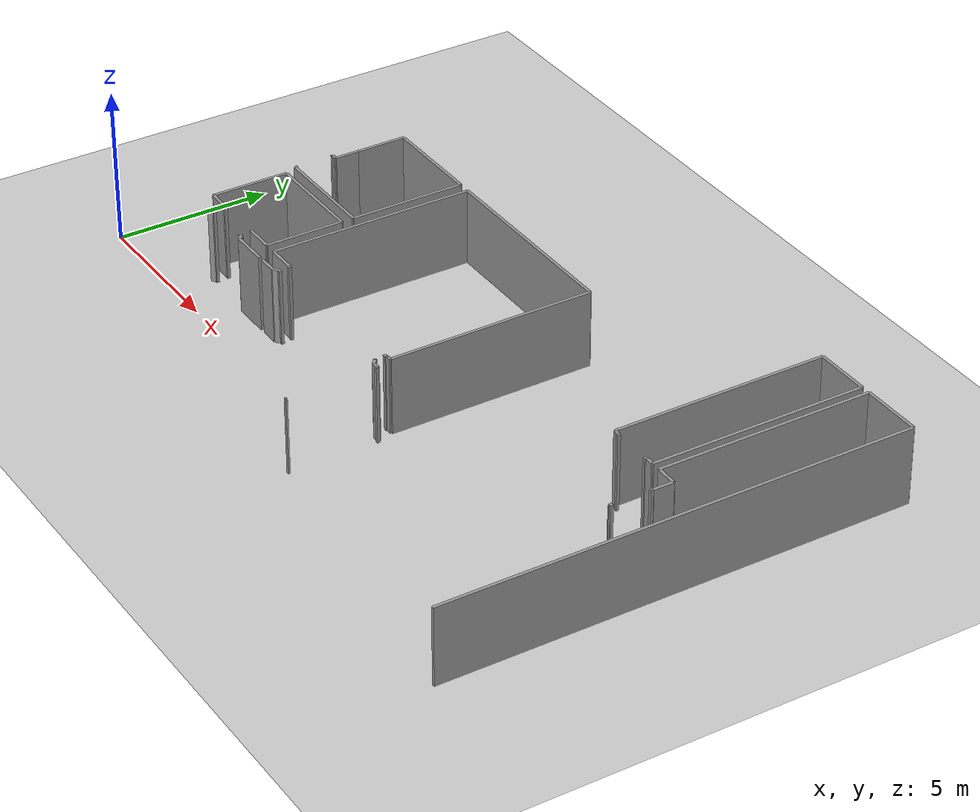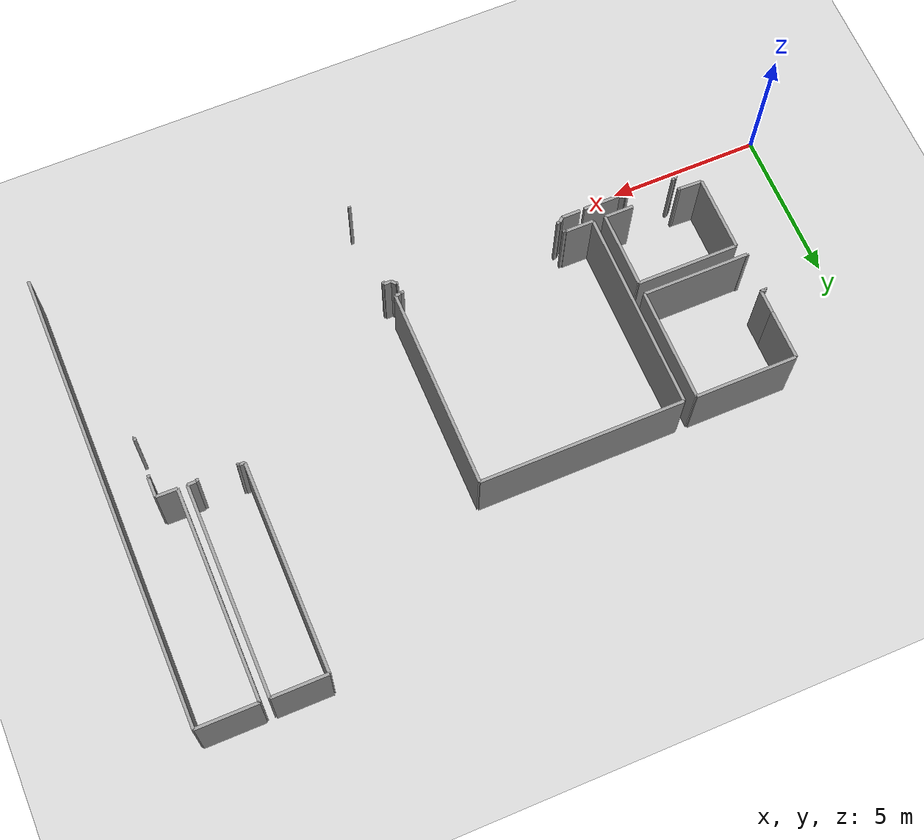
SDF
<sdf version="1.6">
 <world name="default">
  <model name="ground_plane">
   <static>1</static>
   <link name="link">
    <collision name="collision">
     <geometry><plane><normal>0 0 1</normal><size>100 100</size></plane></geometry>
     <surface><friction><ode><mu>100</mu><mu2>50</mu2></ode></friction></surface>
    </collision>
    <visual name="visual">
     <cast_shadows>0</cast_shadows>
     <geometry><plane><normal>0 0 1</normal><size>100 100</size></plane></geometry>
     <material>
      <script><uri>file://media/materials/scripts/gazebo.material</uri><name>Gazebo/Grey</name></script>
     </material>
    </visual>
   </link>
  </model>
  <model name="0510030940_A_40_1_104">
   <static>1</static>
   <link name="Wall_31">
    <collision name="Wall_31_Collision">
     <geometry><box><size>0.172371779898 0.1 2.5</size></box></geometry>
     <pose>0.0861858899488 0 1.25 0 0 0</pose>
    </collision>
    <visual name="Wall_31_Visual">
     <pose>0.0861858899488 0 1.25 0 0 0</pose>
     <geometry><box><size>0.172371779898 0.1 2.5</size></box></geometry>
     <material>
      <script><uri>file://media/materials/scripts/gazebo.material</uri><name>Gazebo/Grey</name></script>
      <ambient>1 1 1 1</ambient>
     </material>
    </visual>
    <pose>27.403807055 -10.7818694724 0 0 0 0.805207876201</pose>
   </link>
   <link name="Wall_32">
    <collision name="Wall_32_Collision">
     <geometry><box><size>0.0859001728169 0.1 2.5</size></box></geometry>
     <pose>0.0429500864085 0 1.25 0 0 0</pose>
    </collision>
    <visual name="Wall_32_Visual">
     <pose>0.0429500864085 0 1.25 0 0 0</pose>
     <geometry><box><size>0.0859001728169 0.1 2.5</size></box></geometry>
     <material>
      <script><uri>file://media/materials/scripts/gazebo.material</uri><name>Gazebo/Grey</name></script>
      <ambient>1 1 1 1</ambient>
     </material>
    </visual>
    <pose>27.5232540409 -10.6575937786 0 0 0 0.0</pose>
   </link>
   <link name="Wall_33">
    <collision name="Wall_33_Collision">
     <geometry><box><size>0.0825963200163 0.1 2.5</size></box></geometry>
     <pose>0.0412981600081 0 1.25 0 0 0</pose>
    </collision>
    <visual name="Wall_33_Visual">
     <pose>0.0412981600081 0 1.25 0 0 0</pose>
     <geometry><box><size>0.0825963200163 0.1 2.5</size></box></geometry>
     <material>
      <script><uri>file://media/materials/scripts/gazebo.material</uri><name>Gazebo/Grey</name></script>
      <ambient>1 1 1 1</ambient>
     </material>
    </visual>
    <pose>29.1739097286 -10.6575937786 0 0 0 0.0</pose>
   </link>
   <link name="Wall_34">
    <collision name="Wall_34_Collision">
     <geometry><box><size>0.185640458335 0.1 2.5</size></box></geometry>
     <pose>0.0928202291675 0 1.25 0 0 0</pose>
    </collision>
    <visual name="Wall_34_Visual">
     <pose>0.0928202291675 0 1.25 0 0 0</pose>
     <geometry><box><size>0.185640458335 0.1 2.5</size></box></geometry>
     <material>
      <script><uri>file://media/materials/scripts/gazebo.material</uri><name>Gazebo/Grey</name></script>
      <ambient>1 1 1 1</ambient>
     </material>
    </visual>
    <pose>29.2565060486 -10.6575937786 0 0 0 -0.77862188764</pose>
   </link>
   <link name="Wall_35">
    <collision name="Wall_35_Collision">
     <geometry><box><size>1.23030395446 0.1 2.5</size></box></geometry>
     <pose>0.615151977229 0 1.25 0 0 0</pose>
    </collision>
    <visual name="Wall_35_Visual">
     <pose>0.615151977229 0 1.25 0 0 0</pose>
     <geometry><box><size>1.23030395446 0.1 2.5</size></box></geometry>
     <material>
      <script><uri>file://media/materials/scripts/gazebo.material</uri><name>Gazebo/Grey</name></script>
      <ambient>1 1 1 1</ambient>
     </material>
    </visual>
    <pose>29.3886601606 -10.787968893 0 0 0 0.0</pose>
   </link>
   <link name="Wall_60">
    <collision name="Wall_60_Collision">
     <geometry><box><size>1.62905357324 0.1 2.5</size></box></geometry>
     <pose>0.814526786622 0 1.25 0 0 0</pose>
    </collision>
    <visual name="Wall_60_Visual">
     <pose>0.814526786622 0 1.25 0 0 0</pose>
     <geometry><box><size>1.62905357324 0.1 2.5</size></box></geometry>
     <material>
      <script><uri>file://media/materials/scripts/gazebo.material</uri><name>Gazebo/Grey</name></script>
      <ambient>1 1 1 1</ambient>
     </material>
    </visual>
    <pose>26.7643844668 -5.2906119752 0 0 0 1.57079632679</pose>
   </link>
   <link name="Wall_61">
    <collision name="Wall_61_Collision">
     <geometry><box><size>3.36027244078 0.1 2.5</size></box></geometry>
     <pose>1.68013622039 0 1.25 0 0 0</pose>
    </collision>
    <visual name="Wall_61_Visual">
     <pose>1.68013622039 0 1.25 0 0 0</pose>
     <geometry><box><size>3.36027244078 0.1 2.5</size></box></geometry>
     <material>
      <script><uri>file://media/materials/scripts/gazebo.material</uri><name>Gazebo/Grey</name></script>
      <ambient>1 1 1 1</ambient>
     </material>
    </visual>
    <pose>26.7643844668 -3.66155840195 0 0 0 0.0</pose>
   </link>
   <link name="Wall_62">
    <collision name="Wall_62_Collision">
     <geometry><box><size>3.71009962387 0.1 2.5</size></box></geometry>
     <pose>1.85504981193 0 1.25 0 0 0</pose>
    </collision>
    <visual name="Wall_62_Visual">
     <pose>1.85504981193 0 1.25 0 0 0</pose>
     <geometry><box><size>3.71009962387 0.1 2.5</size></box></geometry>
     <material>
      <script><uri>file://media/materials/scripts/gazebo.material</uri><name>Gazebo/Grey</name></script>
      <ambient>1 1 1 1</ambient>
     </material>
    </visual>
    <pose>30.1246569076 -3.66155840195 0 0 0 -1.57079632679</pose>
   </link>
   <link name="Wall_63">
    <collision name="Wall_63_Collision">
     <geometry><box><size>3.52660872217 0.1 2.5</size></box></geometry>
     <pose>1.76330436109 0 1.25 0 0 0</pose>
    </collision>
    <visual name="Wall_63_Visual">
     <pose>1.76330436109 0 1.25 0 0 0</pose>
     <geometry><box><size>3.52660872217 0.1 2.5</size></box></geometry>
     <material>
      <script><uri>file://media/materials/scripts/gazebo.material</uri><name>Gazebo/Grey</name></script>
      <ambient>1 1 1 1</ambient>
     </material>
    </visual>
    <pose>30.1246569076 -7.37165802582 0 0 0 3.14159265359</pose>
   </link>
   <link name="Wall_64">
    <collision name="Wall_64_Collision">
     <geometry><box><size>0.0707786926909 0.1 2.5</size></box></geometry>
     <pose>0.0353893463454 0 1.25 0 0 0</pose>
    </collision>
    <visual name="Wall_64_Visual">
     <pose>0.0353893463454 0 1.25 0 0 0</pose>
     <geometry><box><size>0.0707786926909 0.1 2.5</size></box></geometry>
     <material>
      <script><uri>file://media/materials/scripts/gazebo.material</uri><name>Gazebo/Grey</name></script>
      <ambient>1 1 1 1</ambient>
     </material>
    </visual>
    <pose>26.5980481854 -7.37165802582 0 0 0 1.57079632679</pose>
   </link>
   <link name="Wall_65">
    <collision name="Wall_65_Collision">
     <geometry><box><size>0.0505743621023 0.1 2.5</size></box></geometry>
     <pose>0.0252871810511 0 1.25 0 0 0</pose>
    </collision>
    <visual name="Wall_65_Visual">
     <pose>0.0252871810511 0 1.25 0 0 0</pose>
     <geometry><box><size>0.0505743621023 0.1 2.5</size></box></geometry>
     <material>
      <script><uri>file://media/materials/scripts/gazebo.material</uri><name>Gazebo/Grey</name></script>
      <ambient>1 1 1 1</ambient>
     </material>
    </visual>
    <pose>26.5980481854 -6.11022161228 0 0 0 1.57079632679</pose>
   </link>
   <link name="Wall_66">
    <collision name="Wall_66_Collision">
     <geometry><box><size>0.163794856155 0.1 2.5</size></box></geometry>
     <pose>0.0818974280777 0 1.25 0 0 0</pose>
    </collision>
    <visual name="Wall_66_Visual">
     <pose>0.0818974280777 0 1.25 0 0 0</pose>
     <geometry><box><size>0.163794856155 0.1 2.5</size></box></geometry>
     <material>
      <script><uri>file://media/materials/scripts/gazebo.material</uri><name>Gazebo/Grey</name></script>
      <ambient>1 1 1 1</ambient>
     </material>
    </visual>
    <pose>26.5980481854 -6.05964725018 0 0 0 0.0</pose>
   </link>
   <link name="Wall_67">
    <collision name="Wall_67_Collision">
     <geometry><box><size>0.769039474285 0.1 2.5</size></box></geometry>
     <pose>0.384519737143 0 1.25 0 0 0</pose>
    </collision>
    <visual name="Wall_67_Visual">
     <pose>0.384519737143 0 1.25 0 0 0</pose>
     <geometry><box><size>0.769039474285 0.1 2.5</size></box></geometry>
     <material>
      <script><uri>file://media/materials/scripts/gazebo.material</uri><name>Gazebo/Grey</name></script>
      <ambient>1 1 1 1</ambient>
     </material>
    </visual>
    <pose>26.7618430416 -6.05964725018 0 0 0 1.56749164616</pose>
   </link>
   <link name="Wall_68">
    <collision name="Wall_68_Collision">
     <geometry><box><size>2.47534817526 0.1 2.5</size></box></geometry>
     <pose>1.23767408763 0 1.25 0 0 0</pose>
    </collision>
    <visual name="Wall_68_Visual">
     <pose>1.23767408763 0 1.25 0 0 0</pose>
     <geometry><box><size>2.47534817526 0.1 2.5</size></box></geometry>
     <material>
      <script><uri>file://media/materials/scripts/gazebo.material</uri><name>Gazebo/Grey</name></script>
      <ambient>1 1 1 1</ambient>
     </material>
    </visual>
    <pose>26.7731523839 -10.2488055301 0 0 0 1.57079632679</pose>
   </link>
   <link name="Wall_69">
    <collision name="Wall_69_Collision">
     <geometry><box><size>3.351631595 0.1 2.5</size></box></geometry>
     <pose>1.6758157975 0 1.25 0 0 0</pose>
    </collision>
    <visual name="Wall_69_Visual">
     <pose>1.6758157975 0 1.25 0 0 0</pose>
     <geometry><box><size>3.351631595 0.1 2.5</size></box></geometry>
     <material>
      <script><uri>file://media/materials/scripts/gazebo.material</uri><name>Gazebo/Grey</name></script>
      <ambient>1 1 1 1</ambient>
     </material>
    </visual>
    <pose>26.7731523839 -7.77345735488 0 0 0 0.0</pose>
   </link>
   <link name="Wall_70">
    <collision name="Wall_70_Collision">
     <geometry><box><size>2.50355799532 0.1 2.5</size></box></geometry>
     <pose>1.25177899766 0 1.25 0 0 0</pose>
    </collision>
    <visual name="Wall_70_Visual">
     <pose>1.25177899766 0 1.25 0 0 0</pose>
     <geometry><box><size>2.50355799532 0.1 2.5</size></box></geometry>
     <material>
      <script><uri>file://media/materials/scripts/gazebo.material</uri><name>Gazebo/Grey</name></script>
      <ambient>1 1 1 1</ambient>
     </material>
    </visual>
    <pose>30.1247839789 -7.77345735488 0 0 0 -1.57079632679</pose>
   </link>
   <link name="Wall_71">
    <collision name="Wall_71_Collision">
     <geometry><box><size>0.964470875267 0.1 2.5</size></box></geometry>
     <pose>0.482235437633 0 1.25 0 0 0</pose>
    </collision>
    <visual name="Wall_71_Visual">
     <pose>0.482235437633 0 1.25 0 0 0</pose>
     <geometry><box><size>0.964470875267 0.1 2.5</size></box></geometry>
     <material>
      <script><uri>file://media/materials/scripts/gazebo.material</uri><name>Gazebo/Grey</name></script>
      <ambient>1 1 1 1</ambient>
     </material>
    </visual>
    <pose>30.1247839789 -10.2770153502 0 0 0 3.14159265359</pose>
   </link>
   <link name="Wall_72">
    <collision name="Wall_72_Collision">
     <geometry><box><size>0.0733201179221 0.1 2.5</size></box></geometry>
     <pose>0.0366600589611 0 1.25 0 0 0</pose>
    </collision>
    <visual name="Wall_72_Visual">
     <pose>0.0366600589611 0 1.25 0 0 0</pose>
     <geometry><box><size>0.0733201179221 0.1 2.5</size></box></geometry>
     <material>
      <script><uri>file://media/materials/scripts/gazebo.material</uri><name>Gazebo/Grey</name></script>
      <ambient>1 1 1 1</ambient>
     </material>
    </visual>
    <pose>27.5865355291 -10.2770153502 0 0 0 3.14159265359</pose>
   </link>
   <link name="Wall_73">
    <collision name="Wall_73_Collision">
     <geometry><box><size>0.740600485007 0.1 2.5</size></box></geometry>
     <pose>0.370300242503 0 1.25 0 0 0</pose>
    </collision>
    <visual name="Wall_73_Visual">
     <pose>0.370300242503 0 1.25 0 0 0</pose>
     <geometry><box><size>0.740600485007 0.1 2.5</size></box></geometry>
     <material>
      <script><uri>file://media/materials/scripts/gazebo.material</uri><name>Gazebo/Grey</name></script>
      <ambient>1 1 1 1</ambient>
     </material>
    </visual>
    <pose>27.5132154112 -10.2770153502 0 0 0 3.10349296742</pose>
   </link>
   <link name="Wall_75">
    <collision name="Wall_75_Collision">
     <geometry><box><size>0.606511131443 0.1 2.5</size></box></geometry>
     <pose>0.303255565721 0 1.25 0 0 0</pose>
    </collision>
    <visual name="Wall_75_Visual">
     <pose>0.303255565721 0 1.25 0 0 0</pose>
     <geometry><box><size>0.606511131443 0.1 2.5</size></box></geometry>
     <material>
      <script><uri>file://media/materials/scripts/gazebo.material</uri><name>Gazebo/Grey</name></script>
      <ambient>1 1 1 1</ambient>
     </material>
    </visual>
    <pose>30.7725932703 -10.777294907 0 0 0 0.0</pose>
   </link>
   <link name="Wall_76">
    <collision name="Wall_76_Collision">
     <geometry><box><size>0.185306413497 0.1 2.5</size></box></geometry>
     <pose>0.0926532067485 0 1.25 0 0 0</pose>
    </collision>
    <visual name="Wall_76_Visual">
     <pose>0.0926532067485 0 1.25 0 0 0</pose>
     <geometry><box><size>0.185306413497 0.1 2.5</size></box></geometry>
     <material>
      <script><uri>file://media/materials/scripts/gazebo.material</uri><name>Gazebo/Grey</name></script>
      <ambient>1 1 1 1</ambient>
     </material>
    </visual>
    <pose>31.3791044017 -10.777294907 0 0 0 0.737861187709</pose>
   </link>
   <link name="Wall_77">
    <collision name="Wall_77_Collision">
     <geometry><box><size>0.0997509403273 0.1 2.5</size></box></geometry>
     <pose>0.0498754701637 0 1.25 0 0 0</pose>
    </collision>
    <visual name="Wall_77_Visual">
     <pose>0.0498754701637 0 1.25 0 0 0</pose>
     <geometry><box><size>0.0997509403273 0.1 2.5</size></box></geometry>
     <material>
      <script><uri>file://media/materials/scripts/gazebo.material</uri><name>Gazebo/Grey</name></script>
      <ambient>1 1 1 1</ambient>
     </material>
    </visual>
    <pose>31.516214293 -10.6526379994 0 0 0 0.0</pose>
   </link>
   <link name="Wall_78">
    <collision name="Wall_78_Collision">
     <geometry><box><size>0.0546406424723 0.1 2.5</size></box></geometry>
     <pose>0.0273203212362 0 1.25 0 0 0</pose>
    </collision>
    <visual name="Wall_78_Visual">
     <pose>0.0273203212362 0 1.25 0 0 0</pose>
     <geometry><box><size>0.0546406424723 0.1 2.5</size></box></geometry>
     <material>
      <script><uri>file://media/materials/scripts/gazebo.material</uri><name>Gazebo/Grey</name></script>
      <ambient>1 1 1 1</ambient>
     </material>
    </visual>
    <pose>37.0069635051 -10.6526379994 0 0 0 0.0</pose>
   </link>
   <link name="Wall_79">
    <collision name="Wall_79_Collision">
     <geometry><box><size>0.177522691041 0.1 2.5</size></box></geometry>
     <pose>0.0887613455203 0 1.25 0 0 0</pose>
    </collision>
    <visual name="Wall_79_Visual">
     <pose>0.0887613455203 0 1.25 0 0 0</pose>
     <geometry><box><size>0.177522691041 0.1 2.5</size></box></geometry>
     <material>
      <script><uri>file://media/materials/scripts/gazebo.material</uri><name>Gazebo/Grey</name></script>
      <ambient>1 1 1 1</ambient>
     </material>
    </visual>
    <pose>37.0616041476 -10.6526379994 0 0 0 -0.826914314919</pose>
   </link>
   <link name="Wall_80">
    <collision name="Wall_80_Collision">
     <geometry><box><size>0.243087323371 0.1 2.5</size></box></geometry>
     <pose>0.121543661685 0 1.25 0 0 0</pose>
    </collision>
    <visual name="Wall_80_Visual">
     <pose>0.121543661685 0 1.25 0 0 0</pose>
     <geometry><box><size>0.243087323371 0.1 2.5</size></box></geometry>
     <material>
      <script><uri>file://media/materials/scripts/gazebo.material</uri><name>Gazebo/Grey</name></script>
      <ambient>1 1 1 1</ambient>
     </material>
    </visual>
    <pose>37.181813561 -10.7832672563 0 0 0 0.0</pose>
   </link>
   <link name="Wall_81">
    <collision name="Wall_81_Collision">
     <geometry><box><size>0.0902205957101 0.1 2.5</size></box></geometry>
     <pose>0.045110297855 0 1.25 0 0 0</pose>
    </collision>
    <visual name="Wall_81_Visual">
     <pose>0.045110297855 0 1.25 0 0 0</pose>
     <geometry><box><size>0.0902205957101 0.1 2.5</size></box></geometry>
     <material>
      <script><uri>file://media/materials/scripts/gazebo.material</uri><name>Gazebo/Grey</name></script>
      <ambient>1 1 1 1</ambient>
     </material>
    </visual>
    <pose>37.4249008844 -10.7832672563 0 0 0 -1.57079632679</pose>
   </link>
   <link name="Wall_82">
    <collision name="Wall_82_Collision">
     <geometry><box><size>0.0581986377961 0.1 2.5</size></box></geometry>
     <pose>0.029099318898 0 1.25 0 0 0</pose>
    </collision>
    <visual name="Wall_82_Visual">
     <pose>0.029099318898 0 1.25 0 0 0</pose>
     <geometry><box><size>0.0581986377961 0.1 2.5</size></box></geometry>
     <material>
      <script><uri>file://media/materials/scripts/gazebo.material</uri><name>Gazebo/Grey</name></script>
      <ambient>1 1 1 1</ambient>
     </material>
    </visual>
    <pose>37.4249008844 -13.6601606181 0 0 0 -1.57079632679</pose>
   </link>
   <link name="Wall_91">
    <collision name="Wall_91_Collision">
     <geometry><box><size>6.61660058961 0.1 2.5</size></box></geometry>
     <pose>3.30830029481 0 1.25 0 0 0</pose>
    </collision>
    <visual name="Wall_91_Visual">
     <pose>3.30830029481 0 1.25 0 0 0</pose>
     <geometry><box><size>6.61660058961 0.1 2.5</size></box></geometry>
     <material>
      <script><uri>file://media/materials/scripts/gazebo.material</uri><name>Gazebo/Grey</name></script>
      <ambient>1 1 1 1</ambient>
     </material>
    </visual>
    <pose>30.5375114364 -10.2850208397 0 0 0 1.57079632679</pose>
   </link>
   <link name="Wall_92">
    <collision name="Wall_92_Collision">
     <geometry><box><size>6.7065670428 0.1 2.5</size></box></geometry>
     <pose>3.3532835214 0 1.25 0 0 0</pose>
    </collision>
    <visual name="Wall_92_Visual">
     <pose>3.3532835214 0 1.25 0 0 0</pose>
     <geometry><box><size>6.7065670428 0.1 2.5</size></box></geometry>
     <material>
      <script><uri>file://media/materials/scripts/gazebo.material</uri><name>Gazebo/Grey</name></script>
      <ambient>1 1 1 1</ambient>
     </material>
    </visual>
    <pose>30.5375114364 -3.66842025008 0 0 0 0.0</pose>
   </link>
   <link name="Wall_93">
    <collision name="Wall_93_Collision">
     <geometry><box><size>6.61151773915 0.1 2.5</size></box></geometry>
     <pose>3.30575886957 0 1.25 0 0 0</pose>
    </collision>
    <visual name="Wall_93_Visual">
     <pose>3.30575886957 0 1.25 0 0 0</pose>
     <geometry><box><size>6.61151773915 0.1 2.5</size></box></geometry>
     <material>
      <script><uri>file://media/materials/scripts/gazebo.material</uri><name>Gazebo/Grey</name></script>
      <ambient>1 1 1 1</ambient>
     </material>
    </visual>
    <pose>37.2440784792 -3.66842025008 0 0 0 -1.57079632679</pose>
   </link>
   <link name="Wall_94">
    <collision name="Wall_94_Collision">
     <geometry><box><size>0.170529633018 0.1 2.5</size></box></geometry>
     <pose>0.0852648165091 0 1.25 0 0 0</pose>
    </collision>
    <visual name="Wall_94_Visual">
     <pose>0.0852648165091 0 1.25 0 0 0</pose>
     <geometry><box><size>0.170529633018 0.1 2.5</size></box></geometry>
     <material>
      <script><uri>file://media/materials/scripts/gazebo.material</uri><name>Gazebo/Grey</name></script>
      <ambient>1 1 1 1</ambient>
     </material>
    </visual>
    <pose>37.2440784792 -10.2799379892 0 0 0 3.14159265359</pose>
   </link>
   <link name="Wall_95">
    <collision name="Wall_95_Collision">
     <geometry><box><size>0.0247788960049 0.1 2.5</size></box></geometry>
     <pose>0.0123894480024 0 1.25 0 0 0</pose>
    </collision>
    <visual name="Wall_95_Visual">
     <pose>0.0123894480024 0 1.25 0 0 0</pose>
     <geometry><box><size>0.0247788960049 0.1 2.5</size></box></geometry>
     <material>
      <script><uri>file://media/materials/scripts/gazebo.material</uri><name>Gazebo/Grey</name></script>
      <ambient>1 1 1 1</ambient>
     </material>
    </visual>
    <pose>37.0735488462 -10.2799379892 0 0 0 -1.57079632679</pose>
   </link>
   <link name="Wall_96">
    <collision name="Wall_96_Collision">
     <geometry><box><size>0.115634848023 0.1 2.5</size></box></geometry>
     <pose>0.0578174240114 0 1.25 0 0 0</pose>
    </collision>
    <visual name="Wall_96_Visual">
     <pose>0.0578174240114 0 1.25 0 0 0</pose>
     <geometry><box><size>0.115634848023 0.1 2.5</size></box></geometry>
     <material>
      <script><uri>file://media/materials/scripts/gazebo.material</uri><name>Gazebo/Grey</name></script>
      <ambient>1 1 1 1</ambient>
     </material>
    </visual>
    <pose>37.0735488462 -10.3047168852 0 0 0 3.14159265359</pose>
   </link>
   <link name="Wall_97">
    <collision name="Wall_97_Collision">
     <geometry><box><size>0.0974636576192 0.1 2.5</size></box></geometry>
     <pose>0.0487318288096 0 1.25 0 0 0</pose>
    </collision>
    <visual name="Wall_97_Visual">
     <pose>0.0487318288096 0 1.25 0 0 0</pose>
     <geometry><box><size>0.0974636576192 0.1 2.5</size></box></geometry>
     <material>
      <script><uri>file://media/materials/scripts/gazebo.material</uri><name>Gazebo/Grey</name></script>
      <ambient>1 1 1 1</ambient>
     </material>
    </visual>
    <pose>31.5660262275 -10.3047168852 0 0 0 3.14159265359</pose>
   </link>
   <link name="Wall_98">
    <collision name="Wall_98_Collision">
     <geometry><box><size>0.018933617973 0.1 2.5</size></box></geometry>
     <pose>0.00946680898648 0 1.25 0 0 0</pose>
    </collision>
    <visual name="Wall_98_Visual">
     <pose>0.00946680898648 0 1.25 0 0 0</pose>
     <geometry><box><size>0.018933617973 0.1 2.5</size></box></geometry>
     <material>
      <script><uri>file://media/materials/scripts/gazebo.material</uri><name>Gazebo/Grey</name></script>
      <ambient>1 1 1 1</ambient>
     </material>
    </visual>
    <pose>31.4685625699 -10.3047168852 0 0 0 1.57079632679</pose>
   </link>
   <link name="Wall_99">
    <collision name="Wall_99_Collision">
     <geometry><box><size>0.931051445647 0.1 2.5</size></box></geometry>
     <pose>0.465525722824 0 1.25 0 0 0</pose>
    </collision>
    <visual name="Wall_99_Visual">
     <pose>0.465525722824 0 1.25 0 0 0</pose>
     <geometry><box><size>0.931051445647 0.1 2.5</size></box></geometry>
     <material>
      <script><uri>file://media/materials/scripts/gazebo.material</uri><name>Gazebo/Grey</name></script>
      <ambient>1 1 1 1</ambient>
     </material>
    </visual>
    <pose>31.4685625699 -10.2857832673 0 0 0 3.14077376473</pose>
   </link>
   <link name="Wall_137">
    <collision name="Wall_137_Collision">
     <geometry><box><size>6.90746670733 0.1 2.5</size></box></geometry>
     <pose>3.45373335366 0 1.25 0 0 0</pose>
    </collision>
    <visual name="Wall_137_Visual">
     <pose>3.45373335366 0 1.25 0 0 0</pose>
     <geometry><box><size>6.90746670733 0.1 2.5</size></box></geometry>
     <material>
      <script><uri>file://media/materials/scripts/gazebo.material</uri><name>Gazebo/Grey</name></script>
      <ambient>1 1 1 1</ambient>
     </material>
    </visual>
    <pose>43.4474433262 -6.91572633933 0 0 0 1.57079632679</pose>
   </link>
   <link name="Wall_138">
    <collision name="Wall_138_Collision">
     <geometry><box><size>1.81356104503 0.1 2.5</size></box></geometry>
     <pose>0.906780522517 0 1.25 0 0 0</pose>
    </collision>
    <visual name="Wall_138_Visual">
     <pose>0.906780522517 0 1.25 0 0 0</pose>
     <geometry><box><size>1.81356104503 0.1 2.5</size></box></geometry>
     <material>
      <script><uri>file://media/materials/scripts/gazebo.material</uri><name>Gazebo/Grey</name></script>
      <ambient>1 1 1 1</ambient>
     </material>
    </visual>
    <pose>43.4474433262 -0.00825963200163 0 0 0 0.0</pose>
   </link>
   <link name="Wall_139">
    <collision name="Wall_139_Collision">
     <geometry><box><size>6.91026227508 0.1 2.5</size></box></geometry>
     <pose>3.45513113754 0 1.25 0 0 0</pose>
    </collision>
    <visual name="Wall_139_Visual">
     <pose>3.45513113754 0 1.25 0 0 0</pose>
     <geometry><box><size>6.91026227508 0.1 2.5</size></box></geometry>
     <material>
      <script><uri>file://media/materials/scripts/gazebo.material</uri><name>Gazebo/Grey</name></script>
      <ambient>1 1 1 1</ambient>
     </material>
    </visual>
    <pose>45.2610043713 -0.00825963200163 0 0 0 -1.57079632679</pose>
   </link>
   <link name="Wall_140">
    <collision name="Wall_140_Collision">
     <geometry><box><size>0.270534715869 0.1 2.5</size></box></geometry>
     <pose>0.135267357934 0 1.25 0 0 0</pose>
    </collision>
    <visual name="Wall_140_Visual">
     <pose>0.135267357934 0 1.25 0 0 0</pose>
     <geometry><box><size>0.270534715869 0.1 2.5</size></box></geometry>
     <material>
      <script><uri>file://media/materials/scripts/gazebo.material</uri><name>Gazebo/Grey</name></script>
      <ambient>1 1 1 1</ambient>
     </material>
    </visual>
    <pose>45.2610043713 -6.91852190709 0 0 0 3.14159265359</pose>
   </link>
   <link name="Wall_141">
    <collision name="Wall_141_Collision">
     <geometry><box><size>0.0284639625902 0.1 2.5</size></box></geometry>
     <pose>0.0142319812951 0 1.25 0 0 0</pose>
    </collision>
    <visual name="Wall_141_Visual">
     <pose>0.0142319812951 0 1.25 0 0 0</pose>
     <geometry><box><size>0.0284639625902 0.1 2.5</size></box></geometry>
     <material>
      <script><uri>file://media/materials/scripts/gazebo.material</uri><name>Gazebo/Grey</name></script>
      <ambient>1 1 1 1</ambient>
     </material>
    </visual>
    <pose>44.9904696554 -6.91852190709 0 0 0 -1.57079632679</pose>
   </link>
   <link name="Wall_142">
    <collision name="Wall_142_Collision">
     <geometry><box><size>0.0973365863576 0.1 2.5</size></box></geometry>
     <pose>0.0486682931788 0 1.25 0 0 0</pose>
    </collision>
    <visual name="Wall_142_Visual">
     <pose>0.0486682931788 0 1.25 0 0 0</pose>
     <geometry><box><size>0.0973365863576 0.1 2.5</size></box></geometry>
     <material>
      <script><uri>file://media/materials/scripts/gazebo.material</uri><name>Gazebo/Grey</name></script>
      <ambient>1 1 1 1</ambient>
     </material>
    </visual>
    <pose>44.9904696554 -6.94698586968 0 0 0 3.14159265359</pose>
   </link>
   <link name="Wall_143">
    <collision name="Wall_143_Collision">
     <geometry><box><size>0.0768781132459 0.1 2.5</size></box></geometry>
     <pose>0.038439056623 0 1.25 0 0 0</pose>
    </collision>
    <visual name="Wall_143_Visual">
     <pose>0.038439056623 0 1.25 0 0 0</pose>
     <geometry><box><size>0.0768781132459 0.1 2.5</size></box></geometry>
     <material>
      <script><uri>file://media/materials/scripts/gazebo.material</uri><name>Gazebo/Grey</name></script>
      <ambient>1 1 1 1</ambient>
     </material>
    </visual>
    <pose>43.6990444241 -6.94698586968 0 0 0 3.14159265359</pose>
   </link>
   <link name="Wall_144">
    <collision name="Wall_144_Collision">
     <geometry><box><size>0.0182982616651 0.1 2.5</size></box></geometry>
     <pose>0.00914913083257 0 1.25 0 0 0</pose>
    </collision>
    <visual name="Wall_144_Visual">
     <pose>0.00914913083257 0 1.25 0 0 0</pose>
     <geometry><box><size>0.0182982616651 0.1 2.5</size></box></geometry>
     <material>
      <script><uri>file://media/materials/scripts/gazebo.material</uri><name>Gazebo/Grey</name></script>
      <ambient>1 1 1 1</ambient>
     </material>
    </visual>
    <pose>43.6221663109 -6.94698586968 0 0 0 1.57079632679</pose>
   </link>
   <link name="Wall_145">
    <collision name="Wall_145_Collision">
     <geometry><box><size>0.175203070323 0.1 2.5</size></box></geometry>
     <pose>0.0876015351617 0 1.25 0 0 0</pose>
    </collision>
    <visual name="Wall_145_Visual">
     <pose>0.0876015351617 0 1.25 0 0 0</pose>
     <geometry><box><size>0.175203070323 0.1 2.5</size></box></geometry>
     <material>
      <script><uri>file://media/materials/scripts/gazebo.material</uri><name>Gazebo/Grey</name></script>
      <ambient>1 1 1 1</ambient>
     </material>
    </visual>
    <pose>43.6221663109 -6.92868760801 0 0 0 3.06754646064</pose>
   </link>
   <link name="Wall_146">
    <collision name="Wall_146_Collision">
     <geometry><box><size>6.91725119447 0.1 2.5</size></box></geometry>
     <pose>3.45862559723 0 1.25 0 0 0</pose>
    </collision>
    <visual name="Wall_146_Visual">
     <pose>3.45862559723 0 1.25 0 0 0</pose>
     <geometry><box><size>6.91725119447 0.1 2.5</size></box></geometry>
     <material>
      <script><uri>file://media/materials/scripts/gazebo.material</uri><name>Gazebo/Grey</name></script>
      <ambient>1 1 1 1</ambient>
     </material>
    </visual>
    <pose>45.5667378266 -6.91928433465 0 0 0 1.57079632679</pose>
   </link>
   <link name="Wall_147">
    <collision name="Wall_147_Collision">
     <geometry><box><size>1.98675917455 0.1 2.5</size></box></geometry>
     <pose>0.993379587273 0 1.25 0 0 0</pose>
    </collision>
    <visual name="Wall_147_Visual">
     <pose>0.993379587273 0 1.25 0 0 0</pose>
     <geometry><box><size>1.98675917455 0.1 2.5</size></box></geometry>
     <material>
      <script><uri>file://media/materials/scripts/gazebo.material</uri><name>Gazebo/Grey</name></script>
      <ambient>1 1 1 1</ambient>
     </material>
    </visual>
    <pose>45.5667378266 -0.00203314018502 0 0 0 0.0</pose>
   </link>
   <link name="Wall_148">
    <collision name="Wall_148_Collision">
     <geometry><box><size>15.1058503609 0.1 2.5</size></box></geometry>
     <pose>7.55292518044 0 1.25 0 0 0</pose>
    </collision>
    <visual name="Wall_148_Visual">
     <pose>7.55292518044 0 1.25 0 0 0</pose>
     <geometry><box><size>15.1058503609 0.1 2.5</size></box></geometry>
     <material>
      <script><uri>file://media/materials/scripts/gazebo.material</uri><name>Gazebo/Grey</name></script>
      <ambient>1 1 1 1</ambient>
     </material>
    </visual>
    <pose>47.5534970011 -0.00203314018502 0 0 0 -1.57079632679</pose>
   </link>
   <link name="Wall_151">
    <collision name="Wall_151_Collision">
     <geometry><box><size>0.0355799532378 0.1 2.5</size></box></geometry>
     <pose>0.0177899766189 0 1.25 0 0 0</pose>
    </collision>
    <visual name="Wall_151_Visual">
     <pose>0.0177899766189 0 1.25 0 0 0</pose>
     <geometry><box><size>0.0355799532378 0.1 2.5</size></box></geometry>
     <material>
      <script><uri>file://media/materials/scripts/gazebo.material</uri><name>Gazebo/Grey</name></script>
      <ambient>1 1 1 1</ambient>
     </material>
    </visual>
    <pose>46.2662651215 -8.93971739351 0 0 0 3.14159265359</pose>
   </link>
   <link name="Wall_152">
    <collision name="Wall_152_Collision">
     <geometry><box><size>0.106612788452 0.1 2.5</size></box></geometry>
     <pose>0.0533063942259 0 1.25 0 0 0</pose>
    </collision>
    <visual name="Wall_152_Visual">
     <pose>0.0533063942259 0 1.25 0 0 0</pose>
     <geometry><box><size>0.106612788452 0.1 2.5</size></box></geometry>
     <material>
      <script><uri>file://media/materials/scripts/gazebo.material</uri><name>Gazebo/Grey</name></script>
      <ambient>1 1 1 1</ambient>
     </material>
    </visual>
    <pose>46.2306851682 -8.93971739351 0 0 0 1.57079632679</pose>
   </link>
   <link name="Wall_153">
    <collision name="Wall_153_Collision">
     <geometry><box><size>0.0785300396462 0.1 2.5</size></box></geometry>
     <pose>0.0392650198231 0 1.25 0 0 0</pose>
    </collision>
    <visual name="Wall_153_Visual">
     <pose>0.0392650198231 0 1.25 0 0 0</pose>
     <geometry><box><size>0.0785300396462 0.1 2.5</size></box></geometry>
     <material>
      <script><uri>file://media/materials/scripts/gazebo.material</uri><name>Gazebo/Grey</name></script>
      <ambient>1 1 1 1</ambient>
     </material>
    </visual>
    <pose>46.2306851682 -7.65706007929 0 0 0 1.57079632679</pose>
   </link>
   <link name="Wall_154">
    <collision name="Wall_154_Collision">
     <geometry><box><size>0.0208396868964 0.1 2.5</size></box></geometry>
     <pose>0.0104198434482 0 1.25 0 0 0</pose>
    </collision>
    <visual name="Wall_154_Visual">
     <pose>0.0104198434482 0 1.25 0 0 0</pose>
     <geometry><box><size>0.0208396868964 0.1 2.5</size></box></geometry>
     <material>
      <script><uri>file://media/materials/scripts/gazebo.material</uri><name>Gazebo/Grey</name></script>
      <ambient>1 1 1 1</ambient>
     </material>
    </visual>
    <pose>46.2306851682 -7.57853003965 0 0 0 0.0</pose>
   </link>
   <link name="Wall_155">
    <collision name="Wall_155_Collision">
     <geometry><box><size>0.648444647758 0.1 2.5</size></box></geometry>
     <pose>0.324222323879 0 1.25 0 0 0</pose>
    </collision>
    <visual name="Wall_155_Visual">
     <pose>0.324222323879 0 1.25 0 0 0</pose>
     <geometry><box><size>0.648444647758 0.1 2.5</size></box></geometry>
     <material>
      <script><uri>file://media/materials/scripts/gazebo.material</uri><name>Gazebo/Grey</name></script>
      <ambient>1 1 1 1</ambient>
     </material>
    </visual>
    <pose>46.2515248551 -7.57853003965 0 0 0 1.57079632679</pose>
   </link>
   <link name="Wall_156">
    <collision name="Wall_156_Collision">
     <geometry><box><size>0.684872205108 0.1 2.5</size></box></geometry>
     <pose>0.342436102554 0 1.25 0 0 0</pose>
    </collision>
    <visual name="Wall_156_Visual">
     <pose>0.342436102554 0 1.25 0 0 0</pose>
     <geometry><box><size>0.684872205108 0.1 2.5</size></box></geometry>
     <material>
      <script><uri>file://media/materials/scripts/gazebo.material</uri><name>Gazebo/Grey</name></script>
      <ambient>1 1 1 1</ambient>
     </material>
    </visual>
    <pose>46.2515248551 -6.93008539189 0 0 0 3.12582109074</pose>
   </link>
   <pose>-23.75 11.9814577615 0 0 0 0</pose>
  </model>
 </world>
</sdf>
